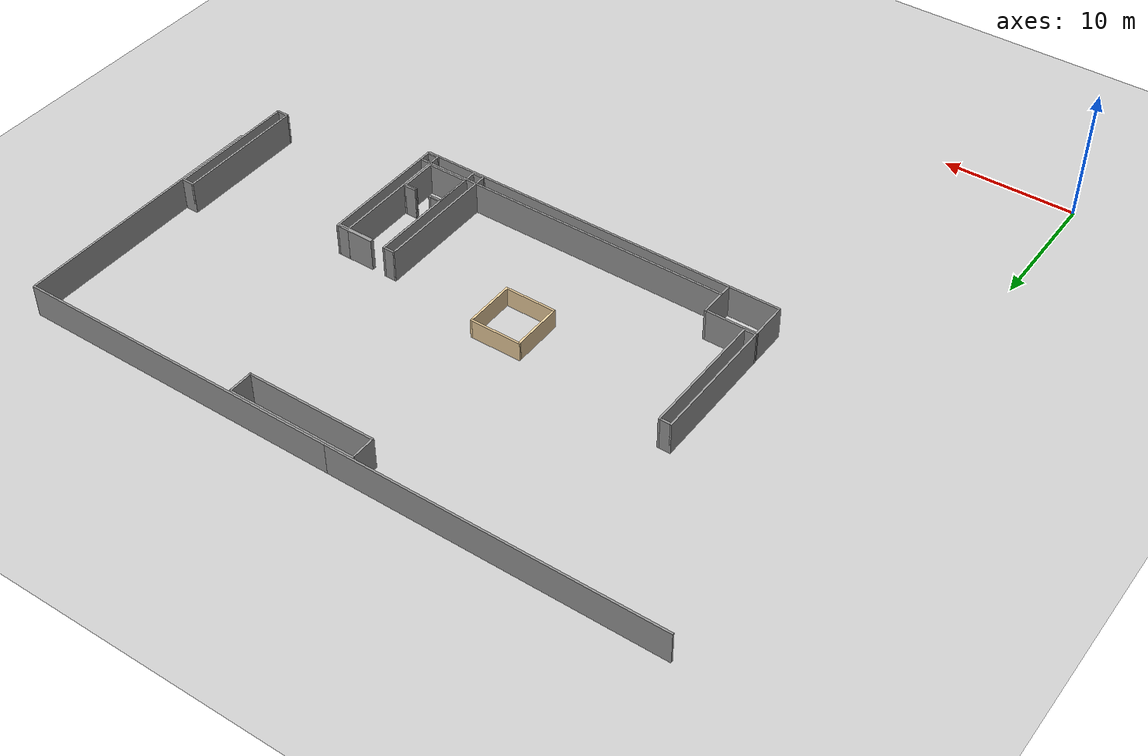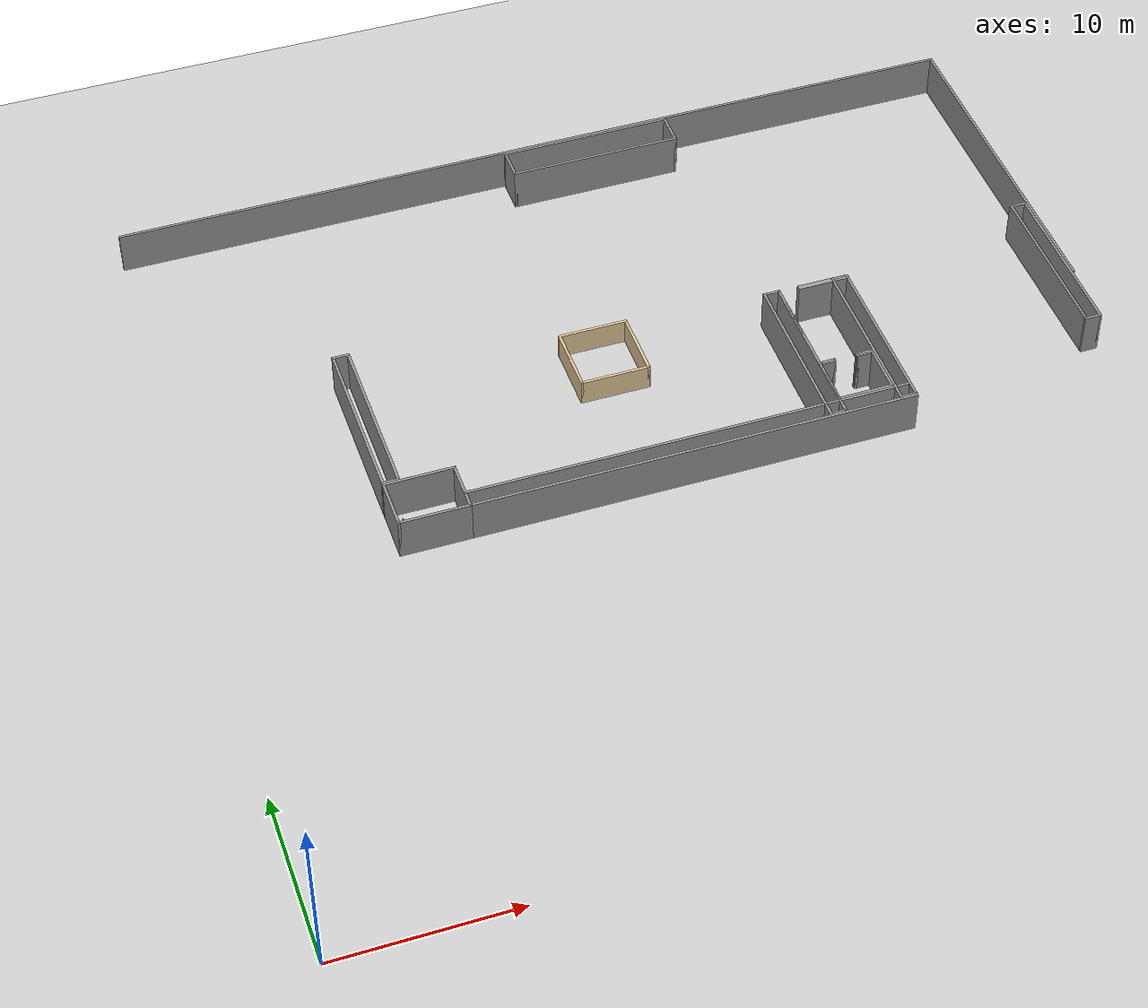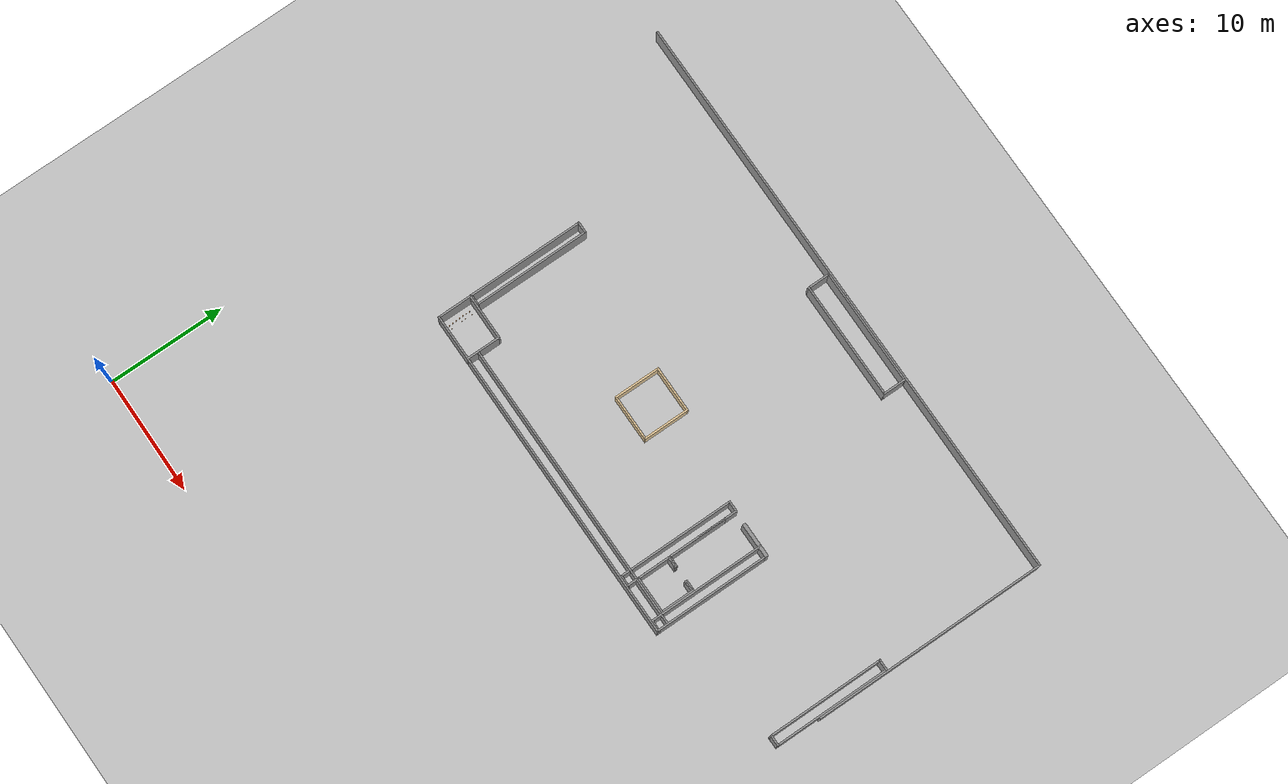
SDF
<sdf version="1.6">
 <world name="default">
  <model name="ground_plane">
   <static>1</static>
   <link name="link">
    <collision name="collision">
     <geometry><plane><normal>0 0 1</normal><size>105 105</size></plane></geometry>
     <surface>
      <contact><collide_bitmask>65535</collide_bitmask></contact>
      <friction><ode><mu>100</mu><mu2>50</mu2></ode></friction>
     </surface>
    </collision>
    <visual name="visual">
     <cast_shadows>0</cast_shadows>
     <geometry><plane><normal>0 0 1</normal><size>105 105</size></plane></geometry>
     <material>
      <script><uri>file://media/materials/scripts/gazebo.material</uri><name>Gazebo/Grey</name></script>
     </material>
    </visual>
   </link>
  </model>
  <model name="wall_25m_5">
   <pose>14.0033 49.3464 0 0 -0 0</pose>
   <link name="Wall_28">
    <collision name="Wall_28_Collision">
     <geometry><box><size>25 0.15 2.5</size></box></geometry>
     <pose>0 0 1.25 0 -0 0</pose>
    </collision>
    <visual name="Wall_28_Visual">
     <pose>0 0 1.25 0 -0 0</pose>
     <geometry><box><size>25 0.15 2.5</size></box></geometry>
     <material>
      <script><uri>file://media/materials/scripts/gazebo.material</uri><name>Gazebo/Grey</name></script>
      <ambient>1 1 1 1</ambient>
     </material>
     <meta><layer>0</layer></meta>
    </visual>
   </link>
   <static>1</static>
  </model>
  <model name="wall_25m_6">
   <pose>39.0043 49.3458 0 0 -0 0</pose>
   <link name="Wall_28">
    <collision name="Wall_28_Collision">
     <geometry><box><size>25 0.15 2.5</size></box></geometry>
     <pose>0 0 1.25 0 -0 0</pose>
    </collision>
    <visual name="Wall_28_Visual">
     <pose>0 0 1.25 0 -0 0</pose>
     <geometry><box><size>25 0.15 2.5</size></box></geometry>
     <material>
      <script><uri>file://media/materials/scripts/gazebo.material</uri><name>Gazebo/Grey</name></script>
      <ambient>1 1 1 1</ambient>
     </material>
     <meta><layer>0</layer></meta>
    </visual>
   </link>
   <static>1</static>
  </model>
  <model name="wall_v20m_6">
   <pose>51.4317 39.2751 0 0 -0 0</pose>
   <link name="Wall_35">
    <collision name="Wall_35_Collision">
     <geometry><box><size>20 0.15 2.5</size></box></geometry>
     <pose>0 0 1.25 0 -0 0</pose>
    </collision>
    <visual name="Wall_35_Visual">
     <pose>0 0 1.25 0 -0 0</pose>
     <geometry><box><size>20 0.15 2.5</size></box></geometry>
     <material>
      <script><uri>file://media/materials/scripts/gazebo.material</uri><name>Gazebo/Grey</name></script>
      <ambient>1 1 1 1</ambient>
     </material>
     <meta><layer>0</layer></meta>
    </visual>
    <pose>0 -0 0 0 -0 -1.5708</pose>
   </link>
   <static>1</static>
  </model>
  <model name="base10x1">
   <pose>10.8397 30.9726 0 0 -0 0</pose>
   <link name="Wall_15">
    <collision name="Wall_15_Collision">
     <geometry><box><size>10 0.15 2.5</size></box></geometry>
     <pose>0 0 1.25 0 -0 0</pose>
    </collision>
    <visual name="Wall_15_Visual">
     <pose>0 0 1.25 0 -0 0</pose>
     <geometry><box><size>10 0.15 2.5</size></box></geometry>
     <material>
      <script><uri>file://media/materials/scripts/gazebo.material</uri><name>Gazebo/Grey</name></script>
      <ambient>1 1 1 1</ambient>
     </material>
     <meta><layer>0</layer></meta>
    </visual>
    <pose>-0.425 0 0 0 -0 1.5708</pose>
   </link>
   <link name="Wall_16">
    <collision name="Wall_16_Collision">
     <geometry><box><size>1 0.15 2.5</size></box></geometry>
     <pose>0 0 1.25 0 -0 0</pose>
    </collision>
    <visual name="Wall_16_Visual">
     <pose>0 0 1.25 0 -0 0</pose>
     <geometry><box><size>1 0.15 2.5</size></box></geometry>
     <material>
      <script><uri>file://media/materials/scripts/gazebo.material</uri><name>Gazebo/Grey</name></script>
      <ambient>1 1 1 1</ambient>
     </material>
     <meta><layer>0</layer></meta>
    </visual>
    <pose>0 4.925 0 0 -0 0</pose>
   </link>
   <link name="Wall_17">
    <collision name="Wall_17_Collision">
     <geometry><box><size>10 0.15 2.5</size></box></geometry>
     <pose>0 0 1.25 0 -0 0</pose>
    </collision>
    <visual name="Wall_17_Visual">
     <pose>0 0 1.25 0 -0 0</pose>
     <geometry><box><size>10 0.15 2.5</size></box></geometry>
     <material>
      <script><uri>file://media/materials/scripts/gazebo.material</uri><name>Gazebo/Grey</name></script>
      <ambient>1 1 1 1</ambient>
     </material>
     <meta><layer>0</layer></meta>
    </visual>
    <pose>0.425 0 0 0 -0 -1.5708</pose>
   </link>
   <link name="Wall_18">
    <collision name="Wall_18_Collision">
     <geometry><box><size>1 0.15 2.5</size></box></geometry>
     <pose>0 0 1.25 0 -0 0</pose>
    </collision>
    <visual name="Wall_18_Visual">
     <pose>0 0 1.25 0 -0 0</pose>
     <geometry><box><size>1 0.15 2.5</size></box></geometry>
     <material>
      <script><uri>file://media/materials/scripts/gazebo.material</uri><name>Gazebo/Grey</name></script>
      <ambient>1 1 1 1</ambient>
     </material>
     <meta><layer>0</layer></meta>
    </visual>
    <pose>0 -4.925 0 0 -0 3.14159</pose>
   </link>
   <static>1</static>
  </model>
  <model name="base3x4_30">
   <pose>12.3458 24.5057 0 0 -0 0</pose>
   <link name="Wall_18">
    <collision name="Wall_18_Collision">
     <geometry><box><size>3 0.15 2.5</size></box></geometry>
     <pose>0 0 1.25 0 -0 0</pose>
    </collision>
    <visual name="Wall_18_Visual">
     <pose>0 0 1.25 0 -0 0</pose>
     <geometry><box><size>3 0.15 2.5</size></box></geometry>
     <material>
      <script><uri>file://media/materials/scripts/gazebo.material</uri><name>Gazebo/Grey</name></script>
      <ambient>1 1 1 1</ambient>
     </material>
     <meta><layer>0</layer></meta>
    </visual>
    <pose>-1.925 -0 0 0 -0 -1.5708</pose>
   </link>
   <link name="Wall_19">
    <collision name="Wall_19_Collision">
     <geometry><box><size>4 0.15 2.5</size></box></geometry>
     <pose>0 0 1.25 0 -0 0</pose>
    </collision>
    <visual name="Wall_19_Visual">
     <pose>0 0 1.25 0 -0 0</pose>
     <geometry><box><size>4 0.15 2.5</size></box></geometry>
     <material>
      <script><uri>file://media/materials/scripts/gazebo.material</uri><name>Gazebo/Grey</name></script>
      <ambient>1 1 1 1</ambient>
     </material>
     <meta><layer>0</layer></meta>
    </visual>
    <pose>-0 -1.425 0 0 -0 0</pose>
   </link>
   <link name="Wall_20">
    <collision name="Wall_20_Collision">
     <geometry><box><size>3 0.15 2.5</size></box></geometry>
     <pose>0 0 1.25 0 -0 0</pose>
    </collision>
    <visual name="Wall_20_Visual">
     <pose>0 0 1.25 0 -0 0</pose>
     <geometry><box><size>3 0.15 2.5</size></box></geometry>
     <material>
      <script><uri>file://media/materials/scripts/gazebo.material</uri><name>Gazebo/Grey</name></script>
      <ambient>1 1 1 1</ambient>
     </material>
     <meta><layer>0</layer></meta>
    </visual>
    <pose>1.925 -0 0 0 -0 1.5708</pose>
   </link>
   <link name="Wall_21">
    <collision name="Wall_21_Collision">
     <geometry><box><size>4 0.15 2.5</size></box></geometry>
     <pose>0 0 1.25 0 -0 0</pose>
    </collision>
    <visual name="Wall_21_Visual">
     <pose>0 0 1.25 0 -0 0</pose>
     <geometry><box><size>4 0.15 2.5</size></box></geometry>
     <material>
      <script><uri>file://media/materials/scripts/gazebo.material</uri><name>Gazebo/Grey</name></script>
      <ambient>1 1 1 1</ambient>
     </material>
     <meta><layer>0</layer></meta>
    </visual>
    <pose>-0 1.425 0 0 -0 3.14159</pose>
   </link>
   <static>1</static>
  </model>
  <model name="wall_25m_0">
   <pose>26.8412 23.0792 0 0 -0 0</pose>
   <link name="Wall_28">
    <collision name="Wall_28_Collision">
     <geometry><box><size>25 0.15 2.5</size></box></geometry>
     <pose>0 0 1.25 0 -0 0</pose>
    </collision>
    <visual name="Wall_28_Visual">
     <pose>0 0 1.25 0 -0 0</pose>
     <geometry><box><size>25 0.15 2.5</size></box></geometry>
     <material>
      <script><uri>file://media/materials/scripts/gazebo.material</uri><name>Gazebo/Grey</name></script>
      <ambient>1 1 1 1</ambient>
     </material>
     <meta><layer>0</layer></meta>
    </visual>
   </link>
   <static>1</static>
  </model>
  <model name="base10x1_1">
   <pose>38.8563 28.1195 0 0 -0 0</pose>
   <link name="Wall_15">
    <collision name="Wall_15_Collision">
     <geometry><box><size>10 0.15 2.5</size></box></geometry>
     <pose>0 0 1.25 0 -0 0</pose>
    </collision>
    <visual name="Wall_15_Visual">
     <pose>0 0 1.25 0 -0 0</pose>
     <geometry><box><size>10 0.15 2.5</size></box></geometry>
     <material>
      <script><uri>file://media/materials/scripts/gazebo.material</uri><name>Gazebo/Grey</name></script>
      <ambient>1 1 1 1</ambient>
     </material>
     <meta><layer>0</layer></meta>
    </visual>
    <pose>-0.425 0 0 0 -0 1.5708</pose>
   </link>
   <link name="Wall_16">
    <collision name="Wall_16_Collision">
     <geometry><box><size>1 0.15 2.5</size></box></geometry>
     <pose>0 0 1.25 0 -0 0</pose>
    </collision>
    <visual name="Wall_16_Visual">
     <pose>0 0 1.25 0 -0 0</pose>
     <geometry><box><size>1 0.15 2.5</size></box></geometry>
     <material>
      <script><uri>file://media/materials/scripts/gazebo.material</uri><name>Gazebo/Grey</name></script>
      <ambient>1 1 1 1</ambient>
     </material>
     <meta><layer>0</layer></meta>
    </visual>
    <pose>0 4.925 0 0 -0 0</pose>
   </link>
   <link name="Wall_17">
    <collision name="Wall_17_Collision">
     <geometry><box><size>10 0.15 2.5</size></box></geometry>
     <pose>0 0 1.25 0 -0 0</pose>
    </collision>
    <visual name="Wall_17_Visual">
     <pose>0 0 1.25 0 -0 0</pose>
     <geometry><box><size>10 0.15 2.5</size></box></geometry>
     <material>
      <script><uri>file://media/materials/scripts/gazebo.material</uri><name>Gazebo/Grey</name></script>
      <ambient>1 1 1 1</ambient>
     </material>
     <meta><layer>0</layer></meta>
    </visual>
    <pose>0.425 0 0 0 -0 -1.5708</pose>
   </link>
   <link name="Wall_18">
    <collision name="Wall_18_Collision">
     <geometry><box><size>1 0.15 2.5</size></box></geometry>
     <pose>0 0 1.25 0 -0 0</pose>
    </collision>
    <visual name="Wall_18_Visual">
     <pose>0 0 1.25 0 -0 0</pose>
     <geometry><box><size>1 0.15 2.5</size></box></geometry>
     <material>
      <script><uri>file://media/materials/scripts/gazebo.material</uri><name>Gazebo/Grey</name></script>
      <ambient>1 1 1 1</ambient>
     </material>
     <meta><layer>0</layer></meta>
    </visual>
    <pose>0 -4.925 0 0 -0 3.14159</pose>
   </link>
   <static>1</static>
  </model>
  <model name="wall_25m_2">
   <pose>26.7296 24.0129 0 0 -0 0</pose>
   <link name="Wall_28">
    <collision name="Wall_28_Collision">
     <geometry><box><size>25 0.15 2.5</size></box></geometry>
     <pose>0 0 1.25 0 -0 0</pose>
    </collision>
    <visual name="Wall_28_Visual">
     <pose>0 0 1.25 0 -0 0</pose>
     <geometry><box><size>25 0.15 2.5</size></box></geometry>
     <material>
      <script><uri>file://media/materials/scripts/gazebo.material</uri><name>Gazebo/Grey</name></script>
      <ambient>1 1 1 1</ambient>
     </material>
     <meta><layer>0</layer></meta>
    </visual>
   </link>
   <static>1</static>
  </model>
  <model name="wood_cube_7_5cm">
   <link name="link">
    <pose>0 0 0.0375 0 -0 0</pose>
    <inertial>
     <mass>0.2249</mass>
     <inertia>
      <ixx>0.000210844</ixx>
      <ixy>0</ixy>
      <ixz>0</ixz>
      <iyy>0.000210844</iyy>
      <iyz>0</iyz>
      <izz>0.000210844</izz>
     </inertia>
    </inertial>
    <collision name="collision">
     <geometry><box><size>0.075 0.075 0.075</size></box></geometry>
     <surface>
      <contact>
       <poissons_ratio>0.347</poissons_ratio>
       <elastic_modulus>8.8e+09</elastic_modulus>
       <ode><kp>100000</kp><kd>100</kd><max_vel>100</max_vel><min_depth>0.001</min_depth></ode>
      </contact>
      <friction>
       <torsional>
        <coefficient>1</coefficient>
        <use_patch_radius>0</use_patch_radius>
        <surface_radius>0.01</surface_radius>
       </torsional>
      </friction>
     </surface>
    </collision>
    <visual name="visual">
     <geometry><box><size>0.075 0.075 0.075</size></box></geometry>
     <material>
      <script><uri>file://media/materials/scripts/gazebo.material</uri><name>Gazebo/Wood</name></script>
     </material>
    </visual>
   </link>
   <pose>11.0047 23.569 -0.001006 -0 -0 -0</pose>
  </model>
  <model name="wood_cube_7_5cm_0">
   <link name="link">
    <pose>0 0 0.0375 0 -0 0</pose>
    <inertial>
     <mass>0.2249</mass>
     <inertia>
      <ixx>0.000210844</ixx>
      <ixy>0</ixy>
      <ixz>0</ixz>
      <iyy>0.000210844</iyy>
      <iyz>0</iyz>
      <izz>0.000210844</izz>
     </inertia>
    </inertial>
    <collision name="collision">
     <geometry><box><size>0.075 0.075 0.075</size></box></geometry>
     <surface>
      <contact>
       <poissons_ratio>0.347</poissons_ratio>
       <elastic_modulus>8.8e+09</elastic_modulus>
       <ode><kp>100000</kp><kd>100</kd><max_vel>100</max_vel><min_depth>0.001</min_depth></ode>
      </contact>
      <friction>
       <torsional>
        <coefficient>1</coefficient>
        <use_patch_radius>0</use_patch_radius>
        <surface_radius>0.01</surface_radius>
       </torsional>
      </friction>
     </surface>
    </collision>
    <visual name="visual">
     <geometry><box><size>0.075 0.075 0.075</size></box></geometry>
     <material>
      <script><uri>file://media/materials/scripts/gazebo.material</uri><name>Gazebo/Wood</name></script>
     </material>
    </visual>
   </link>
   <pose>10.9881 23.8737 -0.001006 -0 -0 -0</pose>
  </model>
  <model name="wood_cube_7_5cm_1">
   <link name="link">
    <pose>0 0 0.0375 0 -0 0</pose>
    <inertial>
     <mass>0.2249</mass>
     <inertia>
      <ixx>0.000210844</ixx>
      <ixy>0</ixy>
      <ixz>0</ixz>
      <iyy>0.000210844</iyy>
      <iyz>0</iyz>
      <izz>0.000210844</izz>
     </inertia>
    </inertial>
    <collision name="collision">
     <geometry><box><size>0.075 0.075 0.075</size></box></geometry>
     <surface>
      <contact>
       <poissons_ratio>0.347</poissons_ratio>
       <elastic_modulus>8.8e+09</elastic_modulus>
       <ode><kp>100000</kp><kd>100</kd><max_vel>100</max_vel><min_depth>0.001</min_depth></ode>
      </contact>
      <friction>
       <torsional>
        <coefficient>1</coefficient>
        <use_patch_radius>0</use_patch_radius>
        <surface_radius>0.01</surface_radius>
       </torsional>
      </friction>
     </surface>
    </collision>
    <visual name="visual">
     <geometry><box><size>0.075 0.075 0.075</size></box></geometry>
     <material>
      <script><uri>file://media/materials/scripts/gazebo.material</uri><name>Gazebo/Wood</name></script>
     </material>
    </visual>
   </link>
   <pose>10.9777 24.1915 -0.001006 -0 -0 -0</pose>
  </model>
  <model name="wood_cube_7_5cm_2">
   <link name="link">
    <pose>0 0 0.0375 0 -0 0</pose>
    <inertial>
     <mass>0.2249</mass>
     <inertia>
      <ixx>0.000210844</ixx>
      <ixy>0</ixy>
      <ixz>0</ixz>
      <iyy>0.000210844</iyy>
      <iyz>0</iyz>
      <izz>0.000210844</izz>
     </inertia>
    </inertial>
    <collision name="collision">
     <geometry><box><size>0.075 0.075 0.075</size></box></geometry>
     <surface>
      <contact>
       <poissons_ratio>0.347</poissons_ratio>
       <elastic_modulus>8.8e+09</elastic_modulus>
       <ode><kp>100000</kp><kd>100</kd><max_vel>100</max_vel><min_depth>0.001</min_depth></ode>
      </contact>
      <friction>
       <torsional>
        <coefficient>1</coefficient>
        <use_patch_radius>0</use_patch_radius>
        <surface_radius>0.01</surface_radius>
       </torsional>
      </friction>
     </surface>
    </collision>
    <visual name="visual">
     <geometry><box><size>0.075 0.075 0.075</size></box></geometry>
     <material>
      <script><uri>file://media/materials/scripts/gazebo.material</uri><name>Gazebo/Wood</name></script>
     </material>
    </visual>
   </link>
   <pose>10.9676 24.5094 -0.001006 -0 -0 -0</pose>
  </model>
  <model name="wood_cube_7_5cm_3">
   <link name="link">
    <pose>0 0 0.0375 0 -0 0</pose>
    <inertial>
     <mass>0.2249</mass>
     <inertia>
      <ixx>0.000210844</ixx>
      <ixy>0</ixy>
      <ixz>0</ixz>
      <iyy>0.000210844</iyy>
      <iyz>0</iyz>
      <izz>0.000210844</izz>
     </inertia>
    </inertial>
    <collision name="collision">
     <geometry><box><size>0.075 0.075 0.075</size></box></geometry>
     <surface>
      <contact>
       <poissons_ratio>0.347</poissons_ratio>
       <elastic_modulus>8.8e+09</elastic_modulus>
       <ode><kp>100000</kp><kd>100</kd><max_vel>100</max_vel><min_depth>0.001</min_depth></ode>
      </contact>
      <friction>
       <torsional>
        <coefficient>1</coefficient>
        <use_patch_radius>0</use_patch_radius>
        <surface_radius>0.01</surface_radius>
       </torsional>
      </friction>
     </surface>
    </collision>
    <visual name="visual">
     <geometry><box><size>0.075 0.075 0.075</size></box></geometry>
     <material>
      <script><uri>file://media/materials/scripts/gazebo.material</uri><name>Gazebo/Wood</name></script>
     </material>
    </visual>
   </link>
   <pose>10.9506 24.8272 -0.001006 0 -0 1.5e-05</pose>
  </model>
  <model name="wood_cube_7_5cm_4">
   <link name="link">
    <pose>0 0 0.0375 0 -0 0</pose>
    <inertial>
     <mass>0.2249</mass>
     <inertia>
      <ixx>0.000210844</ixx>
      <ixy>0</ixy>
      <ixz>0</ixz>
      <iyy>0.000210844</iyy>
      <iyz>0</iyz>
      <izz>0.000210844</izz>
     </inertia>
    </inertial>
    <collision name="collision">
     <geometry><box><size>0.075 0.075 0.075</size></box></geometry>
     <surface>
      <contact>
       <poissons_ratio>0.347</poissons_ratio>
       <elastic_modulus>8.8e+09</elastic_modulus>
       <ode><kp>100000</kp><kd>100</kd><max_vel>100</max_vel><min_depth>0.001</min_depth></ode>
      </contact>
      <friction>
       <torsional>
        <coefficient>1</coefficient>
        <use_patch_radius>0</use_patch_radius>
        <surface_radius>0.01</surface_radius>
       </torsional>
      </friction>
     </surface>
    </collision>
    <visual name="visual">
     <geometry><box><size>0.075 0.075 0.075</size></box></geometry>
     <material>
      <script><uri>file://media/materials/scripts/gazebo.material</uri><name>Gazebo/Wood</name></script>
     </material>
    </visual>
   </link>
   <pose>10.9473 25.1252 -0.001006 0 -0 5e-06</pose>
  </model>
  <model name="wood_cube_7_5cm_5">
   <link name="link">
    <pose>0 0 0.0375 0 -0 0</pose>
    <inertial>
     <mass>0.2249</mass>
     <inertia>
      <ixx>0.000210844</ixx>
      <ixy>0</ixy>
      <ixz>0</ixz>
      <iyy>0.000210844</iyy>
      <iyz>0</iyz>
      <izz>0.000210844</izz>
     </inertia>
    </inertial>
    <collision name="collision">
     <geometry><box><size>0.075 0.075 0.075</size></box></geometry>
     <surface>
      <contact>
       <poissons_ratio>0.347</poissons_ratio>
       <elastic_modulus>8.8e+09</elastic_modulus>
       <ode><kp>100000</kp><kd>100</kd><max_vel>100</max_vel><min_depth>0.001</min_depth></ode>
      </contact>
      <friction>
       <torsional>
        <coefficient>1</coefficient>
        <use_patch_radius>0</use_patch_radius>
        <surface_radius>0.01</surface_radius>
       </torsional>
      </friction>
     </surface>
    </collision>
    <visual name="visual">
     <geometry><box><size>0.075 0.075 0.075</size></box></geometry>
     <material>
      <script><uri>file://media/materials/scripts/gazebo.material</uri><name>Gazebo/Wood</name></script>
     </material>
    </visual>
   </link>
   <pose>10.9436 25.4497 -0.001006 -0 -0 -0</pose>
  </model>
  <model name="wood_cube_5cm">
   <link name="link">
    <pose>0 0 0.025 0 -0 0</pose>
    <inertial>
     <mass>0.0565</mass>
     <inertia>
      <ixx>2.35417e-05</ixx>
      <ixy>0</ixy>
      <ixz>0</ixz>
      <iyy>2.35417e-05</iyy>
      <iyz>0</iyz>
      <izz>2.35417e-05</izz>
     </inertia>
    </inertial>
    <collision name="collision">
     <geometry><box><size>0.05 0.05 0.05</size></box></geometry>
     <surface>
      <contact>
       <poissons_ratio>0.347</poissons_ratio>
       <elastic_modulus>8.8e+09</elastic_modulus>
       <ode><kp>100000</kp><kd>1</kd><max_vel>1</max_vel><min_depth>0.001</min_depth></ode>
      </contact>
      <friction>
       <torsional>
        <coefficient>1</coefficient>
        <use_patch_radius>0</use_patch_radius>
        <surface_radius>0.05</surface_radius>
       </torsional>
      </friction>
     </surface>
    </collision>
    <visual name="visual">
     <geometry><box><size>0.05 0.05 0.05</size></box></geometry>
     <material>
      <script><uri>file://media/materials/scripts/gazebo.material</uri><name>Gazebo/Wood</name></script>
     </material>
    </visual>
   </link>
   <pose>11.2698 23.5655 -0.001001 0 -0 0</pose>
  </model>
  <model name="wood_cube_5cm_0">
   <link name="link">
    <pose>0 0 0.025 0 -0 0</pose>
    <inertial>
     <mass>0.0565</mass>
     <inertia>
      <ixx>2.35417e-05</ixx>
      <ixy>0</ixy>
      <ixz>0</ixz>
      <iyy>2.35417e-05</iyy>
      <iyz>0</iyz>
      <izz>2.35417e-05</izz>
     </inertia>
    </inertial>
    <collision name="collision">
     <geometry><box><size>0.05 0.05 0.05</size></box></geometry>
     <surface>
      <contact>
       <poissons_ratio>0.347</poissons_ratio>
       <elastic_modulus>8.8e+09</elastic_modulus>
       <ode><kp>100000</kp><kd>1</kd><max_vel>1</max_vel><min_depth>0.001</min_depth></ode>
      </contact>
      <friction>
       <torsional>
        <coefficient>1</coefficient>
        <use_patch_radius>0</use_patch_radius>
        <surface_radius>0.05</surface_radius>
       </torsional>
      </friction>
     </surface>
    </collision>
    <visual name="visual">
     <geometry><box><size>0.05 0.05 0.05</size></box></geometry>
     <material>
      <script><uri>file://media/materials/scripts/gazebo.material</uri><name>Gazebo/Wood</name></script>
     </material>
    </visual>
   </link>
   <pose>11.2265 23.8764 -0.001001 0 -0 0</pose>
  </model>
  <model name="wood_cube_5cm_1">
   <link name="link">
    <pose>0 0 0.025 0 -0 0</pose>
    <inertial>
     <mass>0.0565</mass>
     <inertia>
      <ixx>2.35417e-05</ixx>
      <ixy>0</ixy>
      <ixz>0</ixz>
      <iyy>2.35417e-05</iyy>
      <iyz>0</iyz>
      <izz>2.35417e-05</izz>
     </inertia>
    </inertial>
    <collision name="collision">
     <geometry><box><size>0.05 0.05 0.05</size></box></geometry>
     <surface>
      <contact>
       <poissons_ratio>0.347</poissons_ratio>
       <elastic_modulus>8.8e+09</elastic_modulus>
       <ode><kp>100000</kp><kd>1</kd><max_vel>1</max_vel><min_depth>0.001</min_depth></ode>
      </contact>
      <friction>
       <torsional>
        <coefficient>1</coefficient>
        <use_patch_radius>0</use_patch_radius>
        <surface_radius>0.05</surface_radius>
       </torsional>
      </friction>
     </surface>
    </collision>
    <visual name="visual">
     <geometry><box><size>0.05 0.05 0.05</size></box></geometry>
     <material>
      <script><uri>file://media/materials/scripts/gazebo.material</uri><name>Gazebo/Wood</name></script>
     </material>
    </visual>
   </link>
   <pose>11.2228 24.2076 -0.001001 0 -0 0</pose>
  </model>
  <model name="wood_cube_5cm_2">
   <link name="link">
    <pose>0 0 0.025 0 -0 0</pose>
    <inertial>
     <mass>0.0565</mass>
     <inertia>
      <ixx>2.35417e-05</ixx>
      <ixy>0</ixy>
      <ixz>0</ixz>
      <iyy>2.35417e-05</iyy>
      <iyz>0</iyz>
      <izz>2.35417e-05</izz>
     </inertia>
    </inertial>
    <collision name="collision">
     <geometry><box><size>0.05 0.05 0.05</size></box></geometry>
     <surface>
      <contact>
       <poissons_ratio>0.347</poissons_ratio>
       <elastic_modulus>8.8e+09</elastic_modulus>
       <ode><kp>100000</kp><kd>1</kd><max_vel>1</max_vel><min_depth>0.001</min_depth></ode>
      </contact>
      <friction>
       <torsional>
        <coefficient>1</coefficient>
        <use_patch_radius>0</use_patch_radius>
        <surface_radius>0.05</surface_radius>
       </torsional>
      </friction>
     </surface>
    </collision>
    <visual name="visual">
     <geometry><box><size>0.05 0.05 0.05</size></box></geometry>
     <material>
      <script><uri>file://media/materials/scripts/gazebo.material</uri><name>Gazebo/Wood</name></script>
     </material>
    </visual>
   </link>
   <pose>11.2193 24.5122 -0.001001 0 -0 0</pose>
  </model>
  <model name="wood_cube_5cm_3">
   <link name="link">
    <pose>0 0 0.025 0 -0 0</pose>
    <inertial>
     <mass>0.0565</mass>
     <inertia>
      <ixx>2.35417e-05</ixx>
      <ixy>0</ixy>
      <ixz>0</ixz>
      <iyy>2.35417e-05</iyy>
      <iyz>0</iyz>
      <izz>2.35417e-05</izz>
     </inertia>
    </inertial>
    <collision name="collision">
     <geometry><box><size>0.05 0.05 0.05</size></box></geometry>
     <surface>
      <contact>
       <poissons_ratio>0.347</poissons_ratio>
       <elastic_modulus>8.8e+09</elastic_modulus>
       <ode><kp>100000</kp><kd>1</kd><max_vel>1</max_vel><min_depth>0.001</min_depth></ode>
      </contact>
      <friction>
       <torsional>
        <coefficient>1</coefficient>
        <use_patch_radius>0</use_patch_radius>
        <surface_radius>0.05</surface_radius>
       </torsional>
      </friction>
     </surface>
    </collision>
    <visual name="visual">
     <geometry><box><size>0.05 0.05 0.05</size></box></geometry>
     <material>
      <script><uri>file://media/materials/scripts/gazebo.material</uri><name>Gazebo/Wood</name></script>
     </material>
    </visual>
   </link>
   <pose>11.2221 24.8504 -0.001001 0 -0 0</pose>
  </model>
  <model name="wood_cube_5cm_4">
   <link name="link">
    <pose>0 0 0.025 0 -0 0</pose>
    <inertial>
     <mass>0.0565</mass>
     <inertia>
      <ixx>2.35417e-05</ixx>
      <ixy>0</ixy>
      <ixz>0</ixz>
      <iyy>2.35417e-05</iyy>
      <iyz>0</iyz>
      <izz>2.35417e-05</izz>
     </inertia>
    </inertial>
    <collision name="collision">
     <geometry><box><size>0.05 0.05 0.05</size></box></geometry>
     <surface>
      <contact>
       <poissons_ratio>0.347</poissons_ratio>
       <elastic_modulus>8.8e+09</elastic_modulus>
       <ode><kp>100000</kp><kd>1</kd><max_vel>1</max_vel><min_depth>0.001</min_depth></ode>
      </contact>
      <friction>
       <torsional>
        <coefficient>1</coefficient>
        <use_patch_radius>0</use_patch_radius>
        <surface_radius>0.05</surface_radius>
       </torsional>
      </friction>
     </surface>
    </collision>
    <visual name="visual">
     <geometry><box><size>0.05 0.05 0.05</size></box></geometry>
     <material>
      <script><uri>file://media/materials/scripts/gazebo.material</uri><name>Gazebo/Wood</name></script>
     </material>
    </visual>
   </link>
   <pose>11.1789 25.1545 -0.001001 0 -0 0</pose>
  </model>
  <model name="wood_cube_5cm_5">
   <link name="link">
    <pose>0 0 0.025 0 -0 0</pose>
    <inertial>
     <mass>0.0565</mass>
     <inertia>
      <ixx>2.35417e-05</ixx>
      <ixy>0</ixy>
      <ixz>0</ixz>
      <iyy>2.35417e-05</iyy>
      <iyz>0</iyz>
      <izz>2.35417e-05</izz>
     </inertia>
    </inertial>
    <collision name="collision">
     <geometry><box><size>0.05 0.05 0.05</size></box></geometry>
     <surface>
      <contact>
       <poissons_ratio>0.347</poissons_ratio>
       <elastic_modulus>8.8e+09</elastic_modulus>
       <ode><kp>100000</kp><kd>1</kd><max_vel>1</max_vel><min_depth>0.001</min_depth></ode>
      </contact>
      <friction>
       <torsional>
        <coefficient>1</coefficient>
        <use_patch_radius>0</use_patch_radius>
        <surface_radius>0.05</surface_radius>
       </torsional>
      </friction>
     </surface>
    </collision>
    <visual name="visual">
     <geometry><box><size>0.05 0.05 0.05</size></box></geometry>
     <material>
      <script><uri>file://media/materials/scripts/gazebo.material</uri><name>Gazebo/Wood</name></script>
     </material>
    </visual>
   </link>
   <pose>11.2217 25.4529 -0.001001 0 -0 0</pose>
  </model>
  <model name="box4x4x1.5">
   <pose>24.8277 32.6302 0 0 -0 0</pose>
   <link name="Wall_5">
    <collision name="Wall_5_Collision">
     <geometry><box><size>4 0.15 1.5</size></box></geometry>
     <pose>0 0 0.75 0 -0 0</pose>
    </collision>
    <visual name="Wall_5_Visual">
     <pose>0 0 0.75 0 -0 0</pose>
     <geometry><box><size>4 0.15 1.5</size></box></geometry>
     <material>
      <script><uri>file://media/materials/scripts/gazebo.material</uri><name>Gazebo/Grey</name></script>
      <ambient>0.921569 0.807843 0.615686 1</ambient>
     </material>
     <meta><layer>0</layer></meta>
    </visual>
    <pose>-1.925 -0 0 0 -0 -1.5708</pose>
   </link>
   <link name="Wall_6">
    <collision name="Wall_6_Collision">
     <geometry><box><size>4 0.15 1.5</size></box></geometry>
     <pose>0 0 0.75 0 -0 0</pose>
    </collision>
    <visual name="Wall_6_Visual">
     <pose>0 0 0.75 0 -0 0</pose>
     <geometry><box><size>4 0.15 1.5</size></box></geometry>
     <material>
      <script><uri>file://media/materials/scripts/gazebo.material</uri><name>Gazebo/Grey</name></script>
      <ambient>0.921569 0.807843 0.615686 1</ambient>
     </material>
     <meta><layer>0</layer></meta>
    </visual>
    <pose>0 -1.925 0 0 -0 0</pose>
   </link>
   <link name="Wall_7">
    <collision name="Wall_7_Collision">
     <geometry><box><size>4 0.15 1.5</size></box></geometry>
     <pose>0 0 0.75 0 -0 0</pose>
    </collision>
    <visual name="Wall_7_Visual">
     <pose>0 0 0.75 0 -0 0</pose>
     <geometry><box><size>4 0.15 1.5</size></box></geometry>
     <material>
      <script><uri>file://media/materials/scripts/gazebo.material</uri><name>Gazebo/Grey</name></script>
      <ambient>0.921569 0.807843 0.615686 1</ambient>
     </material>
     <meta><layer>0</layer></meta>
    </visual>
    <pose>1.925 -0 0 0 -0 1.5708</pose>
   </link>
   <link name="Wall_8">
    <collision name="Wall_8_Collision">
     <geometry><box><size>4 0.15 1.5</size></box></geometry>
     <pose>0 0 0.75 0 -0 0</pose>
    </collision>
    <visual name="Wall_8_Visual">
     <pose>0 0 0.75 0 -0 0</pose>
     <geometry><box><size>4 0.15 1.5</size></box></geometry>
     <material>
      <script><uri>file://media/materials/scripts/gazebo.material</uri><name>Gazebo/Grey</name></script>
      <ambient>0.921569 0.807843 0.615686 1</ambient>
     </material>
     <meta><layer>0</layer></meta>
    </visual>
    <pose>0 1.925 0 0 -0 3.14159</pose>
   </link>
   <static>1</static>
  </model>
  <model name="base2x10">
   <pose>29.3485 48.2822 0 0 -0 0</pose>
   <link name="Wall_10">
    <collision name="Wall_10_Collision">
     <geometry><box><size>2 0.15 2.5</size></box></geometry>
     <pose>0 0 1.25 0 -0 0</pose>
    </collision>
    <visual name="Wall_10_Visual">
     <pose>0 0 1.25 0 -0 0</pose>
     <geometry><box><size>2 0.15 2.5</size></box></geometry>
     <material>
      <script><uri>file://media/materials/scripts/gazebo.material</uri><name>Gazebo/Grey</name></script>
      <ambient>1 1 1 1</ambient>
     </material>
     <meta><layer>0</layer></meta>
    </visual>
    <pose>-4.925 0 0 0 -0 -1.5708</pose>
   </link>
   <link name="Wall_11">
    <collision name="Wall_11_Collision">
     <geometry><box><size>10 0.15 2.5</size></box></geometry>
     <pose>0 0 1.25 0 -0 0</pose>
    </collision>
    <visual name="Wall_11_Visual">
     <pose>0 0 1.25 0 -0 0</pose>
     <geometry><box><size>10 0.15 2.5</size></box></geometry>
     <material>
      <script><uri>file://media/materials/scripts/gazebo.material</uri><name>Gazebo/Grey</name></script>
      <ambient>1 1 1 1</ambient>
     </material>
     <meta><layer>0</layer></meta>
    </visual>
    <pose>0 -0.925 0 0 -0 0</pose>
   </link>
   <link name="Wall_12">
    <collision name="Wall_12_Collision">
     <geometry><box><size>2 0.15 2.5</size></box></geometry>
     <pose>0 0 1.25 0 -0 0</pose>
    </collision>
    <visual name="Wall_12_Visual">
     <pose>0 0 1.25 0 -0 0</pose>
     <geometry><box><size>2 0.15 2.5</size></box></geometry>
     <material>
      <script><uri>file://media/materials/scripts/gazebo.material</uri><name>Gazebo/Grey</name></script>
      <ambient>1 1 1 1</ambient>
     </material>
     <meta><layer>0</layer></meta>
    </visual>
    <pose>4.925 0 0 0 -0 1.5708</pose>
   </link>
   <link name="Wall_13">
    <collision name="Wall_13_Collision">
     <geometry><box><size>10 0.15 2.5</size></box></geometry>
     <pose>0 0 1.25 0 -0 0</pose>
    </collision>
    <visual name="Wall_13_Visual">
     <pose>0 0 1.25 0 -0 0</pose>
     <geometry><box><size>10 0.15 2.5</size></box></geometry>
     <material>
      <script><uri>file://media/materials/scripts/gazebo.material</uri><name>Gazebo/Grey</name></script>
      <ambient>1 1 1 1</ambient>
     </material>
     <meta><layer>0</layer></meta>
    </visual>
    <pose>0 0.925 0 0 -0 3.14159</pose>
   </link>
   <static>1</static>
  </model>
  <model name="base10x1_3">
   <pose>50.8665 30.488 0 0 -0 0</pose>
   <link name="Wall_15">
    <collision name="Wall_15_Collision">
     <geometry><box><size>10 0.15 2.5</size></box></geometry>
     <pose>0 0 1.25 0 -0 0</pose>
    </collision>
    <visual name="Wall_15_Visual">
     <pose>0 0 1.25 0 -0 0</pose>
     <geometry><box><size>10 0.15 2.5</size></box></geometry>
     <material>
      <script><uri>file://media/materials/scripts/gazebo.material</uri><name>Gazebo/Grey</name></script>
      <ambient>1 1 1 1</ambient>
     </material>
     <meta><layer>0</layer></meta>
    </visual>
    <pose>-0.425 0 0 0 -0 1.5708</pose>
   </link>
   <link name="Wall_16">
    <collision name="Wall_16_Collision">
     <geometry><box><size>1 0.15 2.5</size></box></geometry>
     <pose>0 0 1.25 0 -0 0</pose>
    </collision>
    <visual name="Wall_16_Visual">
     <pose>0 0 1.25 0 -0 0</pose>
     <geometry><box><size>1 0.15 2.5</size></box></geometry>
     <material>
      <script><uri>file://media/materials/scripts/gazebo.material</uri><name>Gazebo/Grey</name></script>
      <ambient>1 1 1 1</ambient>
     </material>
     <meta><layer>0</layer></meta>
    </visual>
    <pose>0 4.925 0 0 -0 0</pose>
   </link>
   <link name="Wall_17">
    <collision name="Wall_17_Collision">
     <geometry><box><size>10 0.15 2.5</size></box></geometry>
     <pose>0 0 1.25 0 -0 0</pose>
    </collision>
    <visual name="Wall_17_Visual">
     <pose>0 0 1.25 0 -0 0</pose>
     <geometry><box><size>10 0.15 2.5</size></box></geometry>
     <material>
      <script><uri>file://media/materials/scripts/gazebo.material</uri><name>Gazebo/Grey</name></script>
      <ambient>1 1 1 1</ambient>
     </material>
     <meta><layer>0</layer></meta>
    </visual>
    <pose>0.425 0 0 0 -0 -1.5708</pose>
   </link>
   <link name="Wall_18">
    <collision name="Wall_18_Collision">
     <geometry><box><size>1 0.15 2.5</size></box></geometry>
     <pose>0 0 1.25 0 -0 0</pose>
    </collision>
    <visual name="Wall_18_Visual">
     <pose>0 0 1.25 0 -0 0</pose>
     <geometry><box><size>1 0.15 2.5</size></box></geometry>
     <material>
      <script><uri>file://media/materials/scripts/gazebo.material</uri><name>Gazebo/Grey</name></script>
      <ambient>1 1 1 1</ambient>
     </material>
     <meta><layer>0</layer></meta>
    </visual>
    <pose>0 -4.925 0 0 -0 3.14159</pose>
   </link>
   <static>1</static>
  </model>
  <model name="elevator_120cm_3m_0">
   <pose>36.7667 25.5851 0 0 -0 0</pose>
   <link name="Wall_40">
    <collision name="Wall_40_Collision">
     <geometry><box><size>1 0.15 2.5</size></box></geometry>
     <pose>0 0 1.25 0 -0 0</pose>
    </collision>
    <visual name="Wall_40_Visual">
     <pose>0 0 1.25 0 -0 0</pose>
     <geometry><box><size>1 0.15 2.5</size></box></geometry>
     <material>
      <script><uri>file://media/materials/scripts/gazebo.material</uri><name>Gazebo/Grey</name></script>
      <ambient>1 1 1 1</ambient>
     </material>
     <meta><layer>0</layer></meta>
    </visual>
    <pose>1.1 1.425 0 0 -0 0</pose>
   </link>
   <link name="Wall_41">
    <collision name="Wall_41_Collision">
     <geometry><box><size>3 0.15 2.5</size></box></geometry>
     <pose>0 0 1.25 0 -0 0</pose>
    </collision>
    <visual name="Wall_41_Visual">
     <pose>0 0 1.25 0 -0 0</pose>
     <geometry><box><size>3 0.15 2.5</size></box></geometry>
     <material>
      <script><uri>file://media/materials/scripts/gazebo.material</uri><name>Gazebo/Grey</name></script>
      <ambient>1 1 1 1</ambient>
     </material>
     <meta><layer>0</layer></meta>
    </visual>
    <pose>1.525 0 0 0 -0 -1.5708</pose>
   </link>
   <link name="Wall_43">
    <collision name="Wall_43_Collision">
     <geometry><box><size>1 0.15 2.5</size></box></geometry>
     <pose>0 0 1.25 0 -0 0</pose>
    </collision>
    <visual name="Wall_43_Visual">
     <pose>0 0 1.25 0 -0 0</pose>
     <geometry><box><size>1 0.15 2.5</size></box></geometry>
     <material>
      <script><uri>file://media/materials/scripts/gazebo.material</uri><name>Gazebo/Grey</name></script>
      <ambient>1 1 1 1</ambient>
     </material>
     <meta><layer>0</layer></meta>
    </visual>
    <pose>-1.1 1.425 0 0 -0 3.14159</pose>
   </link>
   <link name="Wall_44">
    <collision name="Wall_44_Collision">
     <geometry><box><size>3 0.15 2.5</size></box></geometry>
     <pose>0 0 1.25 0 -0 0</pose>
    </collision>
    <visual name="Wall_44_Visual">
     <pose>0 0 1.25 0 -0 0</pose>
     <geometry><box><size>3 0.15 2.5</size></box></geometry>
     <material>
      <script><uri>file://media/materials/scripts/gazebo.material</uri><name>Gazebo/Grey</name></script>
      <ambient>1 1 1 1</ambient>
     </material>
     <meta><layer>0</layer></meta>
    </visual>
    <pose>-1.525 0 0 0 -0 -1.5708</pose>
   </link>
   <link name="Wall_45">
    <collision name="Wall_45_Collision">
     <geometry><box><size>3.2 0.15 2.5</size></box></geometry>
     <pose>0 0 1.25 0 -0 0</pose>
    </collision>
    <visual name="Wall_45_Visual">
     <pose>0 0 1.25 0 -0 0</pose>
     <geometry><box><size>3.2 0.15 2.5</size></box></geometry>
     <material>
      <script><uri>file://media/materials/scripts/gazebo.material</uri><name>Gazebo/Grey</name></script>
      <ambient>1 1 1 1</ambient>
     </material>
     <meta><layer>0</layer></meta>
    </visual>
    <pose>0 -1.425 0 0 -0 0</pose>
   </link>
   <link name="Wall_47">
    <collision name="Wall_47_Collision">
     <geometry><box><size>0.25 0.15 2.5</size></box></geometry>
     <pose>0 0 1.25 0 -0 0</pose>
    </collision>
    <visual name="Wall_47_Visual">
     <pose>0 0 1.25 0 -0 0</pose>
     <geometry><box><size>0.25 0.15 2.5</size></box></geometry>
     <material>
      <script><uri>file://media/materials/scripts/gazebo.material</uri><name>Gazebo/Grey</name></script>
      <ambient>1 1 1 1</ambient>
     </material>
     <meta><layer>0</layer></meta>
    </visual>
    <pose>-0.675 1.375 0 0 -0 -1.5708</pose>
   </link>
   <link name="Wall_49">
    <collision name="Wall_49_Collision">
     <geometry><box><size>0.25 0.15 2.5</size></box></geometry>
     <pose>0 0 1.25 0 -0 0</pose>
    </collision>
    <visual name="Wall_49_Visual">
     <pose>0 0 1.25 0 -0 0</pose>
     <geometry><box><size>0.25 0.15 2.5</size></box></geometry>
     <material>
      <script><uri>file://media/materials/scripts/gazebo.material</uri><name>Gazebo/Grey</name></script>
      <ambient>1 1 1 1</ambient>
     </material>
     <meta><layer>0</layer></meta>
    </visual>
    <pose>-1.525 1.375 0 0 -0 -1.5708</pose>
   </link>
   <link name="Wall_50">
    <collision name="Wall_50_Collision">
     <geometry><box><size>1 0.15 2.5</size></box></geometry>
     <pose>0 0 1.25 0 -0 0</pose>
    </collision>
    <visual name="Wall_50_Visual">
     <pose>0 0 1.25 0 -0 0</pose>
     <geometry><box><size>1 0.15 2.5</size></box></geometry>
     <material>
      <script><uri>file://media/materials/scripts/gazebo.material</uri><name>Gazebo/Grey</name></script>
      <ambient>1 1 1 1</ambient>
     </material>
     <meta><layer>0</layer></meta>
    </visual>
    <pose>-1.1 1.325 0 0 -0 0</pose>
   </link>
   <link name="Wall_52">
    <collision name="Wall_52_Collision">
     <geometry><box><size>0.25 0.15 2.5</size></box></geometry>
     <pose>0 0 1.25 0 -0 0</pose>
    </collision>
    <visual name="Wall_52_Visual">
     <pose>0 0 1.25 0 -0 0</pose>
     <geometry><box><size>0.25 0.15 2.5</size></box></geometry>
     <material>
      <script><uri>file://media/materials/scripts/gazebo.material</uri><name>Gazebo/Grey</name></script>
      <ambient>1 1 1 1</ambient>
     </material>
     <meta><layer>0</layer></meta>
    </visual>
    <pose>0.675 1.375 0 0 -0 -1.5708</pose>
   </link>
   <link name="Wall_54">
    <collision name="Wall_54_Collision">
     <geometry><box><size>0.25 0.15 2.5</size></box></geometry>
     <pose>0 0 1.25 0 -0 0</pose>
    </collision>
    <visual name="Wall_54_Visual">
     <pose>0 0 1.25 0 -0 0</pose>
     <geometry><box><size>0.25 0.15 2.5</size></box></geometry>
     <material>
      <script><uri>file://media/materials/scripts/gazebo.material</uri><name>Gazebo/Grey</name></script>
      <ambient>1 1 1 1</ambient>
     </material>
     <meta><layer>0</layer></meta>
    </visual>
    <pose>1.525 1.375 0 0 -0 -1.5708</pose>
   </link>
   <link name="Wall_55">
    <collision name="Wall_55_Collision">
     <geometry><box><size>1 0.15 2.5</size></box></geometry>
     <pose>0 0 1.25 0 -0 0</pose>
    </collision>
    <visual name="Wall_55_Visual">
     <pose>0 0 1.25 0 -0 0</pose>
     <geometry><box><size>1 0.15 2.5</size></box></geometry>
     <material>
      <script><uri>file://media/materials/scripts/gazebo.material</uri><name>Gazebo/Grey</name></script>
      <ambient>1 1 1 1</ambient>
     </material>
     <meta><layer>0</layer></meta>
    </visual>
    <pose>1.1 1.325 0 0 -0 3.14159</pose>
   </link>
   <static>1</static>
  </model>
  <model name="wall_5m">
   <pose>35.2418 29.5688 0 0 -0 0</pose>
   <link name="Wall_30">
    <collision name="Wall_30_Collision">
     <geometry><box><size>5 0.15 2.5</size></box></geometry>
     <pose>0 0 1.25 0 -0 0</pose>
    </collision>
    <visual name="Wall_30_Visual">
     <pose>0 0 1.25 0 -0 0</pose>
     <geometry><box><size>5 0.15 2.5</size></box></geometry>
     <material>
      <script><uri>file://media/materials/scripts/gazebo.material</uri><name>Gazebo/Grey</name></script>
      <ambient>1 1 1 1</ambient>
     </material>
     <meta><layer>0</layer></meta>
    </visual>
    <pose>0 0 0 0 -0 -1.5708</pose>
   </link>
   <static>1</static>
  </model>
  <model name="base10x1_6">
   <pose>34.8115 28.1334 0 0 -0 0</pose>
   <link name="Wall_15">
    <collision name="Wall_15_Collision">
     <geometry><box><size>10 0.15 2.5</size></box></geometry>
     <pose>0 0 1.25 0 -0 0</pose>
    </collision>
    <visual name="Wall_15_Visual">
     <pose>0 0 1.25 0 -0 0</pose>
     <geometry><box><size>10 0.15 2.5</size></box></geometry>
     <material>
      <script><uri>file://media/materials/scripts/gazebo.material</uri><name>Gazebo/Grey</name></script>
      <ambient>1 1 1 1</ambient>
     </material>
     <meta><layer>0</layer></meta>
    </visual>
    <pose>-0.425 0 0 0 -0 1.5708</pose>
   </link>
   <link name="Wall_16">
    <collision name="Wall_16_Collision">
     <geometry><box><size>1 0.15 2.5</size></box></geometry>
     <pose>0 0 1.25 0 -0 0</pose>
    </collision>
    <visual name="Wall_16_Visual">
     <pose>0 0 1.25 0 -0 0</pose>
     <geometry><box><size>1 0.15 2.5</size></box></geometry>
     <material>
      <script><uri>file://media/materials/scripts/gazebo.material</uri><name>Gazebo/Grey</name></script>
      <ambient>1 1 1 1</ambient>
     </material>
     <meta><layer>0</layer></meta>
    </visual>
    <pose>0 4.925 0 0 -0 0</pose>
   </link>
   <link name="Wall_17">
    <collision name="Wall_17_Collision">
     <geometry><box><size>10 0.15 2.5</size></box></geometry>
     <pose>0 0 1.25 0 -0 0</pose>
    </collision>
    <visual name="Wall_17_Visual">
     <pose>0 0 1.25 0 -0 0</pose>
     <geometry><box><size>10 0.15 2.5</size></box></geometry>
     <material>
      <script><uri>file://media/materials/scripts/gazebo.material</uri><name>Gazebo/Grey</name></script>
      <ambient>1 1 1 1</ambient>
     </material>
     <meta><layer>0</layer></meta>
    </visual>
    <pose>0.425 0 0 0 -0 -1.5708</pose>
   </link>
   <link name="Wall_18">
    <collision name="Wall_18_Collision">
     <geometry><box><size>1 0.15 2.5</size></box></geometry>
     <pose>0 0 1.25 0 -0 0</pose>
    </collision>
    <visual name="Wall_18_Visual">
     <pose>0 0 1.25 0 -0 0</pose>
     <geometry><box><size>1 0.15 2.5</size></box></geometry>
     <material>
      <script><uri>file://media/materials/scripts/gazebo.material</uri><name>Gazebo/Grey</name></script>
      <ambient>1 1 1 1</ambient>
     </material>
     <meta><layer>0</layer></meta>
    </visual>
    <pose>0 -4.925 0 0 -0 3.14159</pose>
   </link>
   <static>1</static>
  </model>
  <model name="wall_3mx30cm">
   <pose>37.8574 32.9691 0 0 -0 0</pose>
   <link name="Wall_0">
    <collision name="Wall_0_Collision">
     <geometry><box><size>3 0.3 2.5</size></box></geometry>
     <pose>0 0 1.25 0 -0 0</pose>
    </collision>
    <visual name="Wall_0_Visual">
     <pose>0 0 1.25 0 -0 0</pose>
     <geometry><box><size>3 0.3 2.5</size></box></geometry>
     <material>
      <script><uri>file://media/materials/scripts/gazebo.material</uri><name>Gazebo/Grey</name></script>
      <ambient>1 1 1 1</ambient>
     </material>
     <meta><layer>0</layer></meta>
    </visual>
   </link>
   <static>1</static>
  </model>
 </world>
</sdf>
